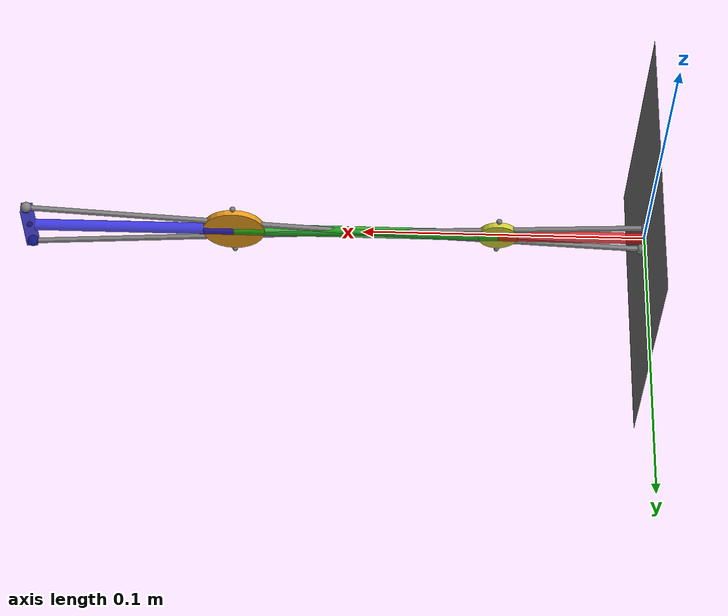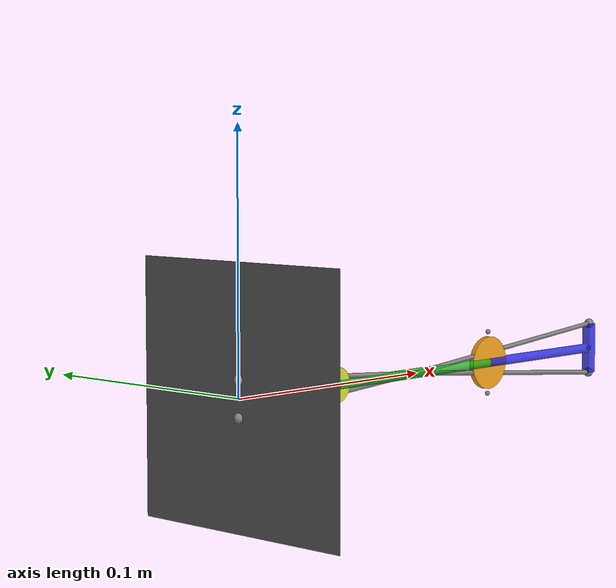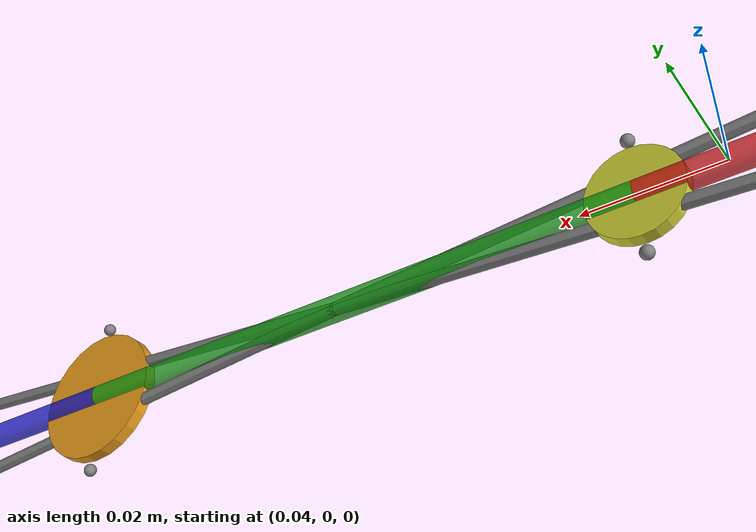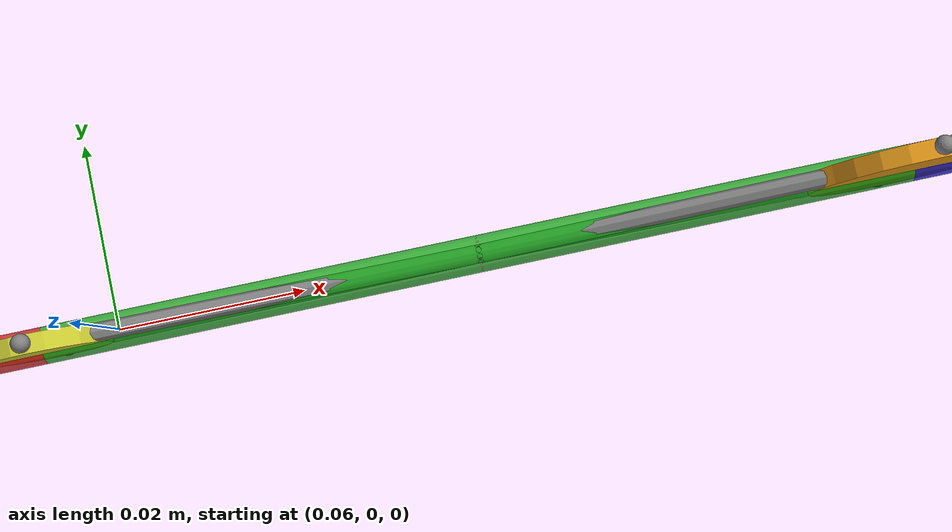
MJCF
<?xml version="1.0" ?>
<mujoco model="2R_tendon_planar">
    <option timestep="1e-4"/>
    <option integrator="RK4"/>
    <option gravity="0 0 0"/>

    <asset>
        <texture type="skybox" builtin="gradient" rgb1="1 1 1" rgb2="0.5 0.5 0.5" width="265" height="256"/>
        <texture name="grid" type="2d" builtin="checker" rgb1="0.1 0.1 0.1" rgb2="0.6 0.6 0.6" width="300" height="300"/>
        <material name="grid" texture="grid" texrepeat="10 10" reflectance="0.2"/>
    </asset>

    <worldbody>
        <light pos="0 0 10"/>

        <camera name="side view" pos="0.1 -1.5 1.0" euler="90 0 0" fovy="60"/>
        <camera name="upper view" pos="0 0 1.5" euler="0 0 0"/>

        <body name="wall" pos="0 0 0" euler="0 90 0">
            <geom type="plane" size="0.05 0.05 0.01" material="grid"/>
            <site name="t1_wall" pos="0.007 0 0" type="sphere" size="0.002"/>
            <site name="t2_wall" pos="-0.007 0 0" type="sphere" size="0.002"/>
        </body>

        <body name="mid_body_t1" pos="0.099 0 0">
            <site name="t1_mid" pos="0 0 0" type="sphere" size="0.001"/>
            <joint name="mid_joint_x_t1" type="slide" axis="1 0 0"/>
            <joint name="mid_joint_y_t1" type="slide" axis="0 0 1"/>
            <geom type="sphere" size="0.002" mass="0.0001" rgba="1.00 0.00 0.00 0.5" contype="0"/>
        </body>

        <body name="mid_body_t2" pos="0.099 0 0">
            <site name="t2_mid" pos="0 0 0" type="sphere" size="0.001"/>
            <joint name="mid_joint_x_t2" type="slide" axis="1 0 0"/>
            <joint name="mid_joint_y_t2" type="slide" axis="0 0 1"/>
            <geom type="sphere" size="0.002" mass="0.0001" rgba="0.00 1.00 0.00 0.5" contype="0"/>
        </body>

        <body name="effector_link" pos="0.219 0 0">
            <site name="effector_world" pos="0 0 0" type="sphere" size="0.001"/>
            <joint name="effector_x" type="slide" axis="1 0 0"/>
            <joint name="effector_y" type="slide" axis="0 0 1"/>
            <geom type="sphere" size="0.002" mass="0.0001" rgba="0.86 0.43 0.54 0.5" contype="0"/>
        </body>

        <body name="link1" pos="0 0 0" euler="0 0 0">
            <geom type="cylinder" pos="0.026 0 0" size="0.002 0.026" euler="0 90 0" rgba="0.9 0.1 0.1 0.8" contype="0"/>

            <body name="link2" pos="0.052 0 0" euler="0 0 0">
                <joint name="A" type="hinge" axis="0 1 0" stiffness="0" springref="0" damping="0"/>
                <geom type="cylinder" pos="0.047 0 0" size="0.002 0.047" euler="0 90 0" rgba="0.1 0.7 0.1 0.8" contype="0"/>

                <geom name="pulley1" type="cylinder" size="0.007 0.001" pos="0 0 0" euler="90 0 0" rgba="0.8 0.8 0.2 0.9" contype="0"/>
                <site name="side_r1_t1" pos="0 0 -0.009" type="sphere" size="0.001"/>
                <site name="side_r1_t2" pos="0 0 0.009" type="sphere" size="0.001"/>
                <site name="pulley1_side" pos="0 0 0" type="sphere" size="0.001"/>

                <body name="link3" pos="0.094 0 0" euler="0 0 0">
                    <joint name="B" type="hinge" axis="0 1 0" stiffness="0" springref="0" damping="0"/>
                    <geom type="cylinder" pos="0.0365 0 0" size="0.002 0.0365" euler="0 90 0" rgba="0.1 0.1 0.9 0.8" contype="0"/>
                    <geom type="box" pos="0.073 0 0" size="0.002 0.002 0.011" rgba="0.1 0.1 0.9 0.8" mass="0" contype="0"/>

                    <site name="t1_end" pos="0.073 0 0.011" type="sphere" size="0.002"/>
                    <site name="t2_end" pos="0.073 0 -0.011" type="sphere" size="0.002"/>

                    <geom name="pulley2" type="cylinder" size="0.011 0.001" pos="0 0 0" euler="90 0 0" rgba="0.9 0.6 0.1 0.9" contype="0"/>
                    <site name="side_r2_t1" pos="0 0 0.013" type="sphere" size="0.001"/>
                    <site name="side_r2_t2" pos="0 0 -0.013" type="sphere" size="0.001"/>
                    <site name="pulley2_side" pos="0 0 0" type="sphere" size="0.001"/>

                    <site name="effector" pos="0.073 0 0" type="sphere" size="0.001"/>
                </body>
            </body>
        </body>
    </worldbody>

    <actuator>
        <!-- Position actuators for joints A and B with PD control -->
        <position name="motor_A" joint="A" kp="500" kv="50" ctrllimited="true" ctrlrange="-1.57 1.57"/>
        <position name="motor_B" joint="B" kp="500" kv="50" ctrllimited="true" ctrlrange="-1.57 1.57"/>
    </actuator>

    <sensor>
        <!-- Joint position and velocity sensors -->
        <jointpos name="joint_A_pos" joint="A"/>
        <jointvel name="joint_A_vel" joint="A"/>
        <jointpos name="joint_B_pos" joint="B"/>
        <jointvel name="joint_B_vel" joint="B"/>

        <!-- Actuator force sensors -->
        <actuatorfrc name="motor_A_force" actuator="motor_A"/>
        <actuatorfrc name="motor_B_force" actuator="motor_B"/>

        <!-- End effector position sensor -->
        <framepos name="effector_pos" objtype="site" objname="effector"/>

        <!-- Site position sensors for tendon attachment points -->
        <framepos name="t1_wall_pos" objtype="site" objname="t1_wall"/>
        <framepos name="t2_wall_pos" objtype="site" objname="t2_wall"/>
        <framepos name="t1_end_pos" objtype="site" objname="t1_end"/>
        <framepos name="t2_end_pos" objtype="site" objname="t2_end"/>
    </sensor>

    <tendon>
        <spatial name="tendon1_1" width="0.001" stiffness="1000" damping="10" springlength="0.005">
            <site site="t1_wall"/>
            <geom geom="pulley1" sidesite="side_r1_t1"/>
            <site site="t1_mid"/>
            <geom geom="pulley2" sidesite="side_r2_t1"/>
            <site site="t1_end"/>
        </spatial>
    </tendon>

    <tendon>
        <spatial name="tendon2_1" width="0.001" stiffness="1000" damping="10" springlength="0.005">
            <site site="t2_wall"/>
            <geom geom="pulley1" sidesite="side_r1_t2"/>
            <site site="t2_mid"/>
            <geom geom="pulley2" sidesite="side_r2_t2"/>
            <site site="t2_end"/>
        </spatial>
    </tendon>

    <equality>
        <weld site1="effector" site2="effector_world" torquescale="100"/>

        <connect site1="t1_mid" site2="pulley1_side"/>
        <connect site1="t1_mid" site2="pulley2_side"/>
        <connect site1="t2_mid" site2="pulley1_side"/>
        <connect site1="t2_mid" site2="pulley2_side"/>
    </equality>
</mujoco>
